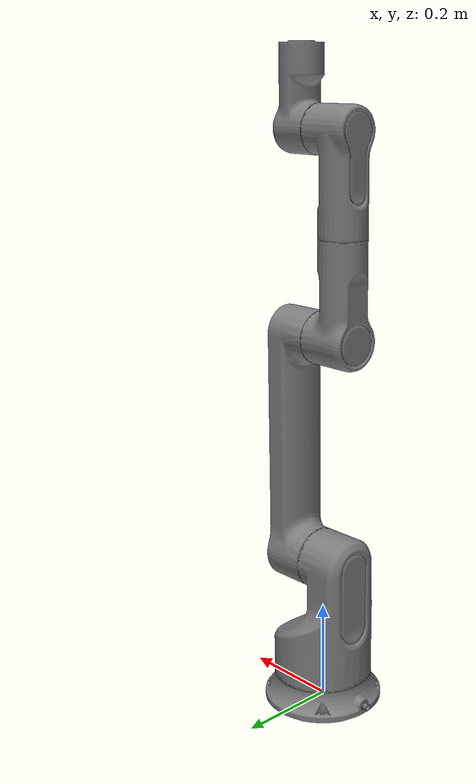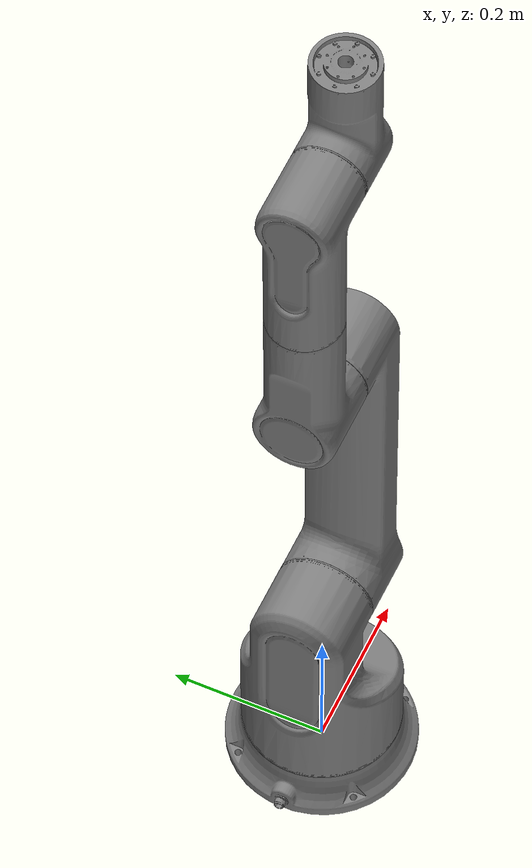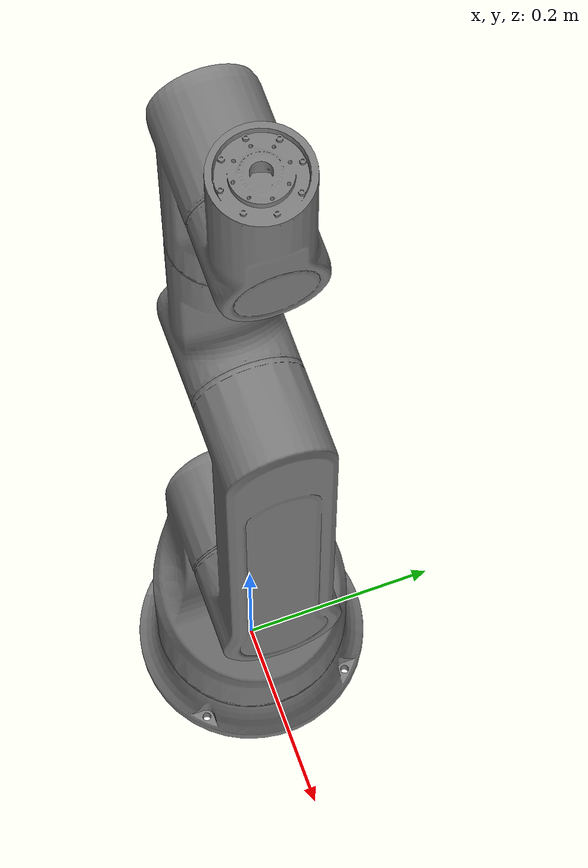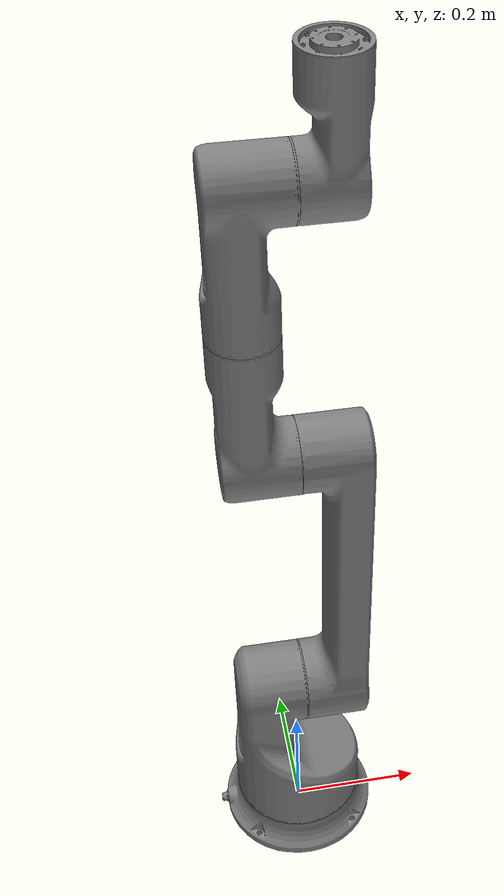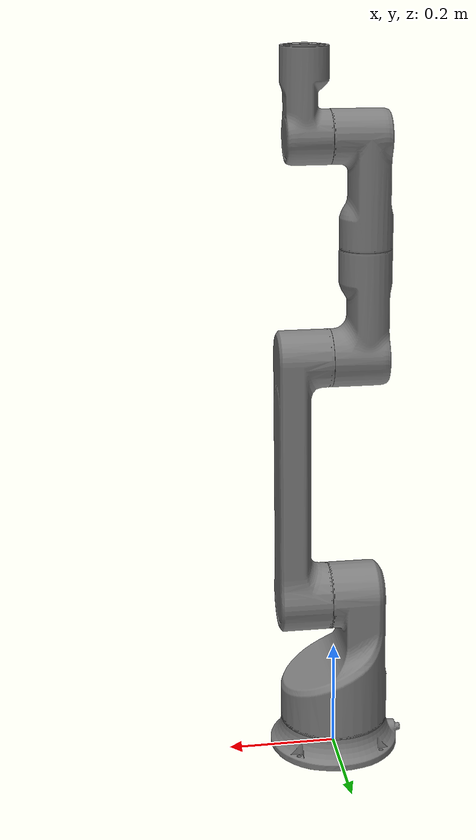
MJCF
<?xml version="1.0" ?>
<mujoco model="arm">
	<compiler meshdir="../assets/meshes" texturedir="../assets/textures" angle="radian" autolimits="true" balanceinertia="true" boundmass="0.000001" boundinertia="0.000001"/>
	<default>
		<default class="visual">
			<geom contype="0" conaffinity="0"/>
		</default>
		<default class="collision">
			<geom rgba="0.9 0.9 0.9 0.0"/>
		</default>
	</default>
	<asset>
		<mesh name="BASE" file="stl/BASE.stl" scale="1.0 1.0 1.0"/>
		<mesh name="LINK1" file="stl/LINK1.stl" scale="1.0 1.0 1.0"/>
		<mesh name="LINK2" file="stl/LINK2.stl" scale="1.0 1.0 1.0"/>
		<mesh name="LINK3" file="stl/LINK3.stl" scale="1.0 1.0 1.0"/>
		<mesh name="LINK4" file="stl/LINK4.stl" scale="1.0 1.0 1.0"/>
		<mesh name="LINK5" file="stl/LINK5.stl" scale="1.0 1.0 1.0"/>
	</asset>
	<worldbody>
		<body name="arm" pos="0.0 0.0 0.0" quat="1.0 0.0 0.0 0.0">
			<body name="BASE" pos="0.0 0.0 0.0" quat="1.0 0.0 0.0 0.0">
				<inertial mass="0.601385235786438" pos="-0.001077802386134863 -9.549959258947638e-07 0.03241827338933945" quat="0.9999922513961792 4.6365872549358755e-05 0.003912098240107298 0.0003734573838301003" diaginertia="0.0032467455603182316 0.0033174839336425066 0.005002879537642002"/>
				<geom name="BASE_geom_visual_0_BASE" type="mesh" pos="0.0 0.0 0.0" quat="1.0 0.0 0.0 0.0" mesh="BASE" class="visual"/>
				<geom name="BASE_geom_collision_0_BASE" type="mesh" pos="0.0 0.0 0.0" quat="1.0 0.0 0.0 0.0" mesh="BASE" class="collision"/>
				<body name="LINK1" pos="0.0 0.0 0.0" quat="1.0 0.0 0.0 0.0">
					<inertial mass="1.232831358909607" pos="-0.018095454201102257 3.040496039830032e-06 0.1923454999923706" quat="0.00046393138472922146 0.6620056629180908 -0.0004143920086789876 0.7494985461235046" diaginertia="0.005427561234682798 0.06088290736079216 0.06134486198425293"/>
					<geom name="LINK1_geom_visual_0_LINK1" type="mesh" pos="0.0 0.0 0.0" quat="1.0 0.0 0.0 0.0" mesh="LINK1" class="visual"/>
					<geom name="LINK1_geom_collision_0_LINK1" type="mesh" pos="0.0 0.0 0.0" quat="1.0 0.0 0.0 0.0" mesh="LINK1" class="collision"/>
					<joint name="JOINT1" type="hinge" pos="0.0 0.0 0.0" range="0.0 6.283200263977051" axis="0.0 0.0 -1.0"/>
					<body name="LINK2" pos="0.0 0.0 0.3050000071525574" quat="0.5 0.5 0.5 0.5">
						<inertial mass="0.5608378052711487" pos="0.06757110357284546 1.971619713003747e-05 0.5094634294509888" quat="0.4566197991371155 0.5398513078689575 -0.45731043815612793 -0.5393756628036499" diaginertia="0.0026068033184856176 0.050808969885110855 0.0516180582344532"/>
						<geom name="LINK2_geom_visual_0_LINK2" type="mesh" pos="0.0 0.0 0.0" quat="1.0 0.0 0.0 0.0" mesh="LINK2" class="visual"/>
						<geom name="LINK2_geom_collision_0_LINK2" type="mesh" pos="0.0 0.0 0.0" quat="1.0 0.0 0.0 0.0" mesh="LINK2" class="collision"/>
						<joint name="JOINT2" type="hinge" pos="0.0 0.0 0.0" range="-2.3561999797821045 2.3561999797821045" axis="0.0 0.0 -1.0"/>
						<body name="LINK3" pos="2.311115933264683e-32 0.46000000834465027 0.10499999672174454" quat="2.4794422104041274e-30 1.6155445638695877e-15 1.0 1.6155445638695877e-15">
							<inertial mass="0.9454330205917358" pos="-0.02846992388367653 2.993930502270814e-05 0.8624111413955688" quat="0.2346872091293335 0.6671229004859924 -0.23437222838401794 -0.6670371890068054" diaginertia="0.0025643666740506887 0.02872420847415924 0.030405791476368904"/>
							<geom name="LINK3_geom_visual_0_LINK3" type="mesh" pos="0.0 0.0 0.0" quat="1.0 0.0 0.0 0.0" mesh="LINK3" class="visual"/>
							<geom name="LINK3_geom_collision_0_LINK3" type="mesh" pos="0.0 0.0 0.0" quat="1.0 0.0 0.0 0.0" mesh="LINK3" class="collision"/>
							<joint name="JOINT3" type="hinge" pos="0.0 -0.0 -2.311115933264683e-32" range="-2.836199998855591 2.836199998855591" axis="0.0 0.0 -1.0"/>
							<body name="LINK4" pos="0.0 1.1102230246251565e-16 0.15800000727176666" quat="0.5 -0.5 0.5 0.5">
								<inertial mass="0.4494718015193939" pos="-0.04205482453107834 -0.00010599445522530004 1.0925683975219727" quat="0.5381067991256714 0.4396097660064697 0.5571280121803284 -0.4547446370124817" diaginertia="0.0006459252326749265 0.0513189435005188 0.051338352262973785"/>
								<geom name="LINK4_geom_visual_0_LINK4" type="mesh" pos="0.0 0.0 0.0" quat="1.0 0.0 0.0 0.0" mesh="LINK4" class="visual"/>
								<geom name="LINK4_geom_collision_0_LINK4" type="mesh" pos="0.0 0.0 0.0" quat="1.0 0.0 0.0 0.0" mesh="LINK4" class="collision"/>
								<joint name="JOINT4" type="hinge" pos="1.1102230246251565e-16 -3.3280069439011436e-31 3.821045009664276e-31" range="0.0 6.283200263977051" axis="0.0 0.0 -1.0"/>
								<body name="LINK5" pos="0.0 7.888609052210118e-31 0.38999998569488525" quat="0.49999815225601196 0.5 0.500001847743988 0.5">
									<inertial mass="0.4230022430419922" pos="0.04312693327665329 0.0002181106829084456 1.2157164812088013" quat="-0.22182345390319824 -0.6705713868141174 0.2243187576532364 0.6714234948158264" diaginertia="0.0010055281454697251 0.006334423087537289 0.006904659327119589"/>
									<geom name="LINK5_geom_visual_0_LINK5" type="mesh" pos="0.0 0.0 0.0" quat="1.0 0.0 0.0 0.0" mesh="LINK5" class="visual"/>
									<geom name="LINK5_geom_collision_0_LINK5" type="mesh" pos="0.0 0.0 0.0" quat="1.0 0.0 0.0 0.0" mesh="LINK5" class="collision"/>
									<joint name="JOINT5" type="hinge" pos="-1.5186328127312734e-30 -2.295167766308207e-30 2.220446049250313e-16" range="0.0 6.283200263977051" axis="0.0 0.0 -1.0"/>
								</body>
							</body>
						</body>
					</body>
				</body>
			</body>
		</body>
	</worldbody>
	<equality/>
	<actuator>
		<position name="JOINT1_actuator" joint="JOINT1" kp="1000" kv="200" ctrlrange="-2.3561999797821045 2.3561999797821045"/>
		<position name="JOINT2_actuator" joint="JOINT2" kp="800" kv="120" ctrlrange="-2.3561999797821045 2.3561999797821045"/>
		<position name="JOINT3_actuator" joint="JOINT3" kp="500" kv="20" ctrlrange="-2.836199998855591 2.836199998855591"/>
		<position name="JOINT4_actuator" joint="JOINT4" kp="50" kv="10" ctrlrange="0.0 6.283200263977051"/>
		<position name="JOINT5_actuator" joint="JOINT5" kp="20" kv="2" ctrlrange="0.0 6.283200263977051"/>
	</actuator>
</mujoco>
